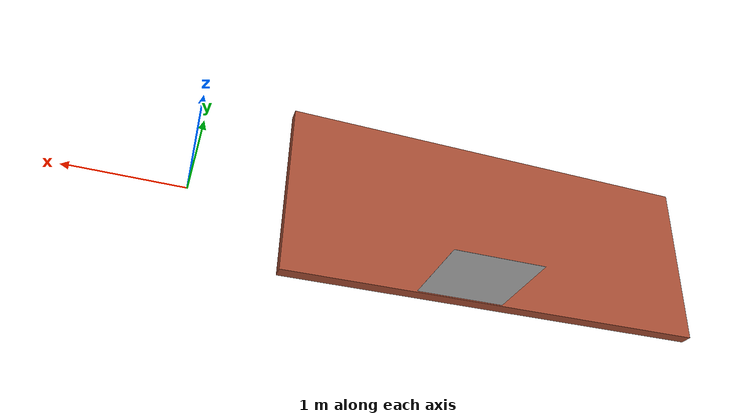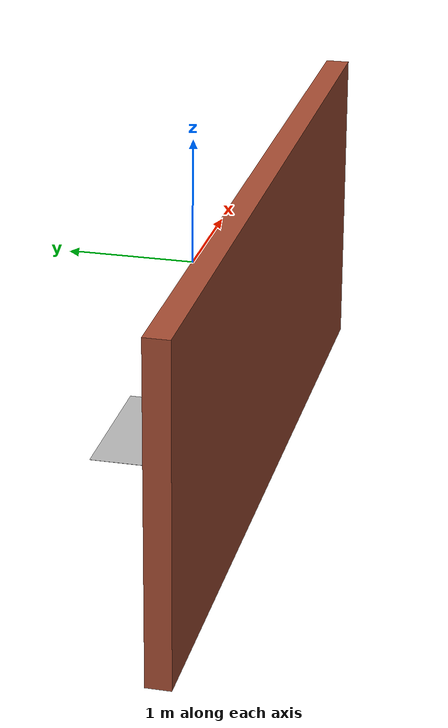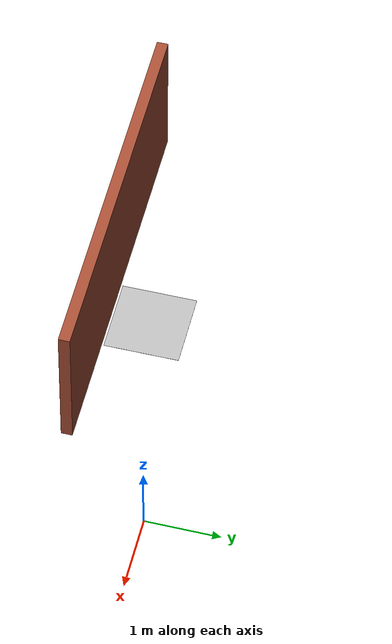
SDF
<?xml version='1.0'?>
<sdf version='1.6'>
  <model name='wall'>
    <pose frame=''>-3.0225 -0.676 0 0 -0 0</pose>
    <link name='Wall_2'>
      <collision name='Wall_2_Collision'>
        <geometry>
          <box>
            <size>5 0.15 2</size>
          </box>
        </geometry>
        <pose frame=''>0 0 1 0 -0 0</pose>
      </collision>
      <visual name='Wall_2_Visual'>
        <pose frame=''>0 0 1 0 -0 0</pose>
        <geometry>
          <box>
            <size>5 0.15 2</size>
          </box>
        </geometry>
        <material>
          <script>
            <uri>file://media/materials/scripts/gazebo.material</uri>
            <name>Gazebo/Bricks</name>
          </script>
          <ambient>1 1 1 1</ambient>
        </material>
        <meta>
          <layer>0</layer>
        </meta>
      </visual>
      <pose frame=''>-0.5225 -0.601 0 0 -0 0</pose>
    </link>
      <link name="link">
         <collision name="collision">
            <geometry>
               <plane>
                  <normal>0 0 1</normal>
                  <size>1 1</size>
               </plane>
            </geometry>
            <surface>
               <friction>
                  <ode>
                     <mu>100</mu>
                     <mu2>50</mu2>
                  </ode>
               </friction>
            </surface>
         </collision>
         <visual name="visual">
            <cast_shadows>false</cast_shadows>
            <geometry>
               <plane>
                  <normal>0 0 1</normal>
                  <size>1 1</size>
               </plane>
            </geometry>
            <material>
               <script>
                  <uri>model://chessboard/materials/scripts</uri>
                  <uri>model://chessboard/materials/textures/</uri>
                  <name>qrcode/Image</name>
               </script>
            </material>
         </visual>
      </link>
    <static>1</static>

  </model>
</sdf>
